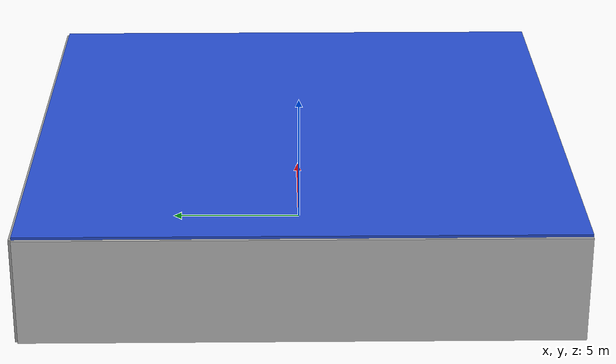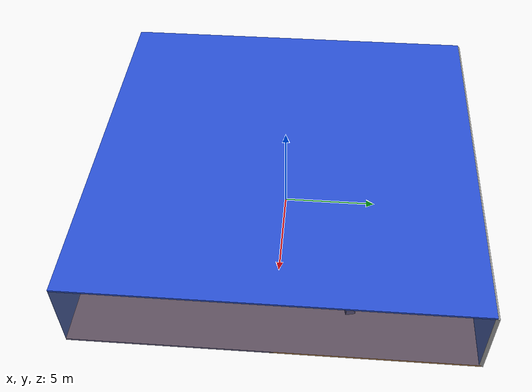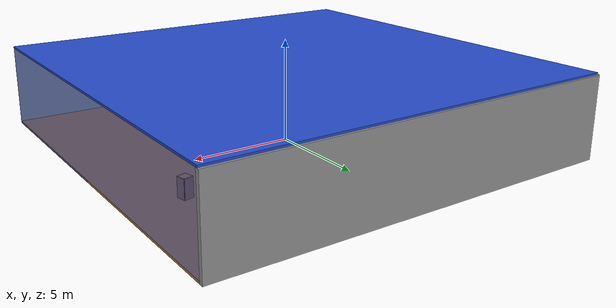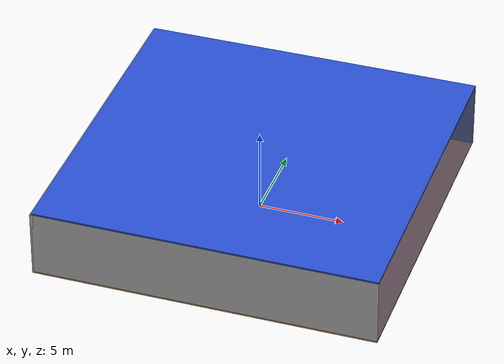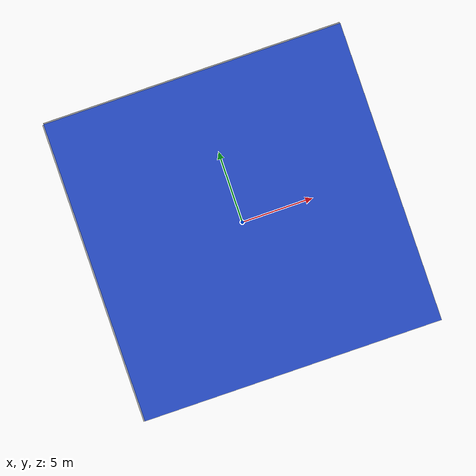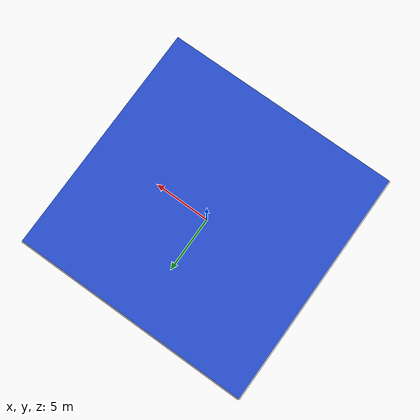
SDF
<sdf version="1.4">
 <world name="default">
  <physics type="ode">
   <max_step_size>0.001</max_step_size>
   <real_time_factor>1</real_time_factor>
   <real_time_update_rate>1000</real_time_update_rate>
   <gravity>0 0 -9.8</gravity>
  </physics>
  <scene><ambient>0.4 0.4 0.4 1</ambient><background>0.7 0.7 0.7 1</background><shadows>1</shadows></scene>
  <model name="Surrounding">
   <static>1</static>
   <link name="Ceiling">
    <collision name="Ceiling_Collision"><geometry><box><size>20 20 0.1</size></box></geometry></collision>
    <visual name="Ceiling_Visual">
     <geometry><box><size>20 20 0.1</size></box></geometry>
     <material>
      <script><uri>file://media/materials/scripts/gazebo.material</uri><name>Gazebo/Blue</name></script>
     </material>
    </visual>
    <pose>0 0 4.05 0 0 0</pose>
   </link>
   <link name="Wall_South">
    <collision name="Wall_South_Collision">
     <geometry><box><size>20 0 4</size></box></geometry>
     <pose>0 0 2 0 -0 0</pose>
    </collision>
    <visual name="Wall_South_Visual">
     <pose>0 0 2 0 -0 0</pose>
     <geometry><box><size>20 0 4</size></box></geometry>
     <material>
      <script><uri>file://media/materials/scripts/gazebo.material</uri><name>Gazebo/PioneerBody</name></script>
     </material>
    </visual>
    <velocity_decay><linear>0</linear><angular>0</angular></velocity_decay>
    <pose>0 -10 0 0 -0 0</pose>
   </link>
   <link name="Wall_East">
    <collision name="Wall_21_Collision">
     <geometry><box><size>20 0 4</size></box></geometry>
     <pose>0 0 2 0 -0 0</pose>
    </collision>
    <visual name="Wall_21_Visual">
     <pose>0 0 2 0 -0 0</pose>
     <geometry><box><size>20 0 4</size></box></geometry>
     <material>
      <script><uri>file://media/materials/scripts/gazebo.material</uri><name>Gazebo/BlueTransparent</name></script>
     </material>
    </visual>
    <velocity_decay><linear>0</linear><angular>0</angular></velocity_decay>
    <pose>10 0 0 0 -0 1.5708</pose>
   </link>
   <link name="Wall_North">
    <collision name="Wall_22_Collision">
     <geometry><box><size>20 0.2 4</size></box></geometry>
     <pose>0 0 2 0 -0 0</pose>
    </collision>
    <visual name="Wall_22_Visual">
     <pose>0 0 2 0 -0 0</pose>
     <geometry><box><size>20 0.2 4</size></box></geometry>
     <material>
      <script><uri>file://media/materials/scripts/gazebo.material</uri><name>Gazebo/GreyGradientSky</name></script>
     </material>
    </visual>
    <velocity_decay><linear>0</linear><angular>0</angular></velocity_decay>
    <pose>0 10 0 0 -0 0</pose>
   </link>
   <link name="Wall_West">
    <collision name="Wall_23_Collision">
     <geometry><box><size>20 0.2 4</size></box></geometry>
     <pose>0 0 2 0 -0 0</pose>
    </collision>
    <visual name="Wall_23_Visual">
     <pose>0 0 2 0 -0 0</pose>
     <geometry><box><size>20 0.2 4</size></box></geometry>
     <material>
      <script><uri>file://media/materials/scripts/gazebo.material</uri><name>Gazebo/PioneerBody</name></script>
     </material>
    </visual>
    <velocity_decay><linear>0</linear><angular>0</angular></velocity_decay>
    <pose>-10 0 0 0 0 -1.5708</pose>
   </link>
   <link name="Ground_link">
    <collision name="collision">
     <pose>0 0 .05 0 -0 0</pose>
     <geometry><box><size>20 20 0.1</size></box></geometry>
    </collision>
    <visual name="visual">
     <pose>0 0 .05 0 -0 0</pose>
     <geometry><box><size>20 20 0.1</size></box></geometry>
     <material>
      <script><uri>file://media/materials/scripts/gazebo.material</uri><name>Gazebo/Wood</name></script>
     </material>
    </visual>
   </link>
   <static>1</static>
  </model>
  <spherical_coordinates>
   <surface_model>EARTH_WGS84</surface_model>
   <latitude_deg>0</latitude_deg>
   <longitude_deg>0</longitude_deg>
   <elevation>0</elevation>
   <heading_deg>0</heading_deg>
  </spherical_coordinates>
  <light name="lightball_0" type="diffuse">
   <diffuse>0.8 0.8 0.8 1</diffuse>
   <specular>0.2 0.2 0.2 1</specular>
   <attenuation>
    <range>100</range>
    <constant>0.7</constant>
    <linear>0.01</linear>
    <quadratic>0.001</quadratic>
   </attenuation>
   <direction>-0.5 0.1 -0.9</direction>
   <pose>0.20120148574 4.92917059672 2.48824057476 0 0 0</pose>
  </light>
  <light name="lightball_1" type="diffuse">
   <diffuse>0.8 0.8 0.8 1</diffuse>
   <specular>0.2 0.2 0.2 1</specular>
   <attenuation>
    <range>100</range>
    <constant>0.7</constant>
    <linear>0.01</linear>
    <quadratic>0.001</quadratic>
   </attenuation>
   <direction>-0.5 0.1 -0.9</direction>
   <pose>-8.79854609734 -6.45903507978 1.93000485617 0 0 0</pose>
  </light>
  <light name="lightball_2" type="diffuse">
   <diffuse>0.8 0.8 0.8 1</diffuse>
   <specular>0.2 0.2 0.2 1</specular>
   <attenuation>
    <range>100</range>
    <constant>0.7</constant>
    <linear>0.01</linear>
    <quadratic>0.001</quadratic>
   </attenuation>
   <direction>-0.5 0.1 -0.9</direction>
   <pose>5.97515186522 -8.10658393164 1.17570463461 0 0 0</pose>
  </light>
  <light name="lightball_3" type="diffuse">
   <diffuse>0.8 0.8 0.8 1</diffuse>
   <specular>0.2 0.2 0.2 1</specular>
   <attenuation>
    <range>100</range>
    <constant>0.7</constant>
    <linear>0.01</linear>
    <quadratic>0.001</quadratic>
   </attenuation>
   <direction>-0.5 0.1 -0.9</direction>
   <pose>-1.58325440464 1.11665327982 3.17546088977 0 0 0</pose>
  </light>
  <light name="lightball_4" type="diffuse">
   <diffuse>0.8 0.8 0.8 1</diffuse>
   <specular>0.2 0.2 0.2 1</specular>
   <attenuation>
    <range>100</range>
    <constant>0.7</constant>
    <linear>0.01</linear>
    <quadratic>0.001</quadratic>
   </attenuation>
   <direction>-0.5 0.1 -0.9</direction>
   <pose>4.33757905359 -6.94423705103 1.78833582105 0 0 0</pose>
  </light>
  <light name="lightball_5" type="diffuse">
   <diffuse>0.8 0.8 0.8 1</diffuse>
   <specular>0.2 0.2 0.2 1</specular>
   <attenuation>
    <range>100</range>
    <constant>0.7</constant>
    <linear>0.01</linear>
    <quadratic>0.001</quadratic>
   </attenuation>
   <direction>-0.5 0.1 -0.9</direction>
   <pose>-4.15942221349 -1.39031623796 3.08723624268 0 0 0</pose>
  </light>
  <light name="lightball_6" type="diffuse">
   <diffuse>0.8 0.8 0.8 1</diffuse>
   <specular>0.2 0.2 0.2 1</specular>
   <attenuation>
    <range>100</range>
    <constant>0.7</constant>
    <linear>0.01</linear>
    <quadratic>0.001</quadratic>
   </attenuation>
   <direction>-0.5 0.1 -0.9</direction>
   <pose>-0.431332905338 1.56271599579 3.18507470606 0 0 0</pose>
  </light>
  <light name="lightball_7" type="diffuse">
   <diffuse>0.8 0.8 0.8 1</diffuse>
   <specular>0.2 0.2 0.2 1</specular>
   <attenuation>
    <range>100</range>
    <constant>0.7</constant>
    <linear>0.01</linear>
    <quadratic>0.001</quadratic>
   </attenuation>
   <direction>-0.5 0.1 -0.9</direction>
   <pose>4.38501272752 -2.69985928018 0.793002813254 0 0 0</pose>
  </light>
  <light name="lightball_8" type="diffuse">
   <diffuse>0.8 0.8 0.8 1</diffuse>
   <specular>0.2 0.2 0.2 1</specular>
   <attenuation>
    <range>100</range>
    <constant>0.7</constant>
    <linear>0.01</linear>
    <quadratic>0.001</quadratic>
   </attenuation>
   <direction>-0.5 0.1 -0.9</direction>
   <pose>2.01400251325 5.32175067957 2.44820525058 0 0 0</pose>
  </light>
  <light name="lightball_9" type="diffuse">
   <diffuse>0.8 0.8 0.8 1</diffuse>
   <specular>0.2 0.2 0.2 1</specular>
   <attenuation>
    <range>100</range>
    <constant>0.7</constant>
    <linear>0.01</linear>
    <quadratic>0.001</quadratic>
   </attenuation>
   <direction>-0.5 0.1 -0.9</direction>
   <pose>5.70933177863 -1.42651813607 2.60077844696 0 0 0</pose>
  </light>
  <light name="lightball_10" type="diffuse">
   <diffuse>0.8 0.8 0.8 1</diffuse>
   <specular>0.2 0.2 0.2 1</specular>
   <attenuation>
    <range>100</range>
    <constant>0.7</constant>
    <linear>0.01</linear>
    <quadratic>0.001</quadratic>
   </attenuation>
   <direction>-0.5 0.1 -0.9</direction>
   <pose>5.11613048464 5.25070553225 3.59120434532 0 0 0</pose>
  </light>
  <light name="lightball_11" type="diffuse">
   <diffuse>0.8 0.8 0.8 1</diffuse>
   <specular>0.2 0.2 0.2 1</specular>
   <attenuation>
    <range>100</range>
    <constant>0.7</constant>
    <linear>0.01</linear>
    <quadratic>0.001</quadratic>
   </attenuation>
   <direction>-0.5 0.1 -0.9</direction>
   <pose>-2.90032411386 8.98638984652 1.56957455001 0 0 0</pose>
  </light>
  <light name="lightball_12" type="diffuse">
   <diffuse>0.8 0.8 0.8 1</diffuse>
   <specular>0.2 0.2 0.2 1</specular>
   <attenuation>
    <range>100</range>
    <constant>0.7</constant>
    <linear>0.01</linear>
    <quadratic>0.001</quadratic>
   </attenuation>
   <direction>-0.5 0.1 -0.9</direction>
   <pose>7.29491901846 -8.72618512484 3.54239239643 0 0 0</pose>
  </light>
  <include><uri>model://cabinet</uri><pose>-7.54470873072 0.719422784381 0 0 0 1.5761506158</pose></include>
  <include>
   <uri>model://textured_shapes</uri>
   <pose>-4.86234809575 7.8352388631 0 0 0 0.995188849924</pose>
  </include>
  <include><uri>model://table</uri><pose>-1.95536579885 6.70178794799 0 0 0 0.29570693253</pose></include>
  <include><uri>model://cabinet</uri><pose>7.35273197672 3.73061245821 0 0 0 0.211083371613</pose></include>
 </world>
</sdf>

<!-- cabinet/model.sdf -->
<sdf version="1.5">
  <model name="cabinet">
    <static>true</static>
    <link name="cabinet_bottom_plate">
      <inertial>
        <pose>0 0 -1 0 0 0</pose>
        <inertia>
          <ixx>2.050000</ixx>
          <ixy>0</ixy>
          <ixz>0</ixz>
          <iyy>2.050000</iyy>
          <iyz>0</iyz>
          <izz>2.050000</izz>
        </inertia>
        <mass>25.000000</mass>
      </inertial>
      <collision name="cabinet_bottom_plate_geom">
        <pose>0 0 0.010000 0 0 0</pose>
        <geometry>
          <box>
            <size>0.450000 0.450000 0.020000</size>
          </box>
        </geometry>
      </collision>
      <visual name="cabinet_bottom_plate_geom_visual">
        <pose>0 0 0.010000 0 0 0</pose>
        <geometry>
          <box>
            <size>0.450000 0.450000 0.020000</size>
          </box>
        </geometry>
        <material>
          <script>
            <uri>model://media/materials/scripts/gazebo.material</uri>
            <name>Gazebo/Wood</name>
          </script>
        </material>
      </visual>
      <collision name="cabinet_bottom_plate_geom_cabinet_back_plate">
        <pose>0.235000 0 0.510000 0 0 0</pose>
        <geometry>
          <box>
            <size>0.020000 0.450000 1.020000</size>
          </box>
        </geometry>
      </collision>
      <visual name="cabinet_bottom_plate_geom_cabinet_back_plate_visual">
        <pose>0.235000 0 0.510000 0 0 0</pose>
        <geometry>
          <box>
            <size>0.020000 0.450000 1.020000</size>
          </box>
        </geometry>
        <material>
          <script>
            <uri>model://media/materials/scripts/gazebo.material</uri>
            <name>Gazebo/Wood</name>
          </script>
        </material>
      </visual>
      <collision name="cabinet_bottom_plate_geom_cabinet_left_plate">
        <pose>0 0.235000 0.510000 0 0 0</pose>
        <geometry>
          <box>
            <size>0.450000 0.020000 1.020000</size>
          </box>
        </geometry>
      </collision>
      <visual name="cabinet_bottom_plate_geom_cabinet_left_plate_visual">
        <pose>0 0.235000 0.510000 0 0 0</pose>
        <geometry>
          <box>
            <size>0.450000 0.020000 1.020000</size>
          </box>
        </geometry>
        <material>
          <script>
            <uri>model://media/materials/scripts/gazebo.material</uri>
            <name>Gazebo/Wood</name>
          </script>
        </material>
      </visual>
      <collision name="cabinet_bottom_plate_geom_cabinet_middle_plate">
        <pose>0 0 0.510000 0 0 0</pose>
        <geometry>
          <box>
            <size>0.450000 0.450000 0.020000</size>
          </box>
        </geometry>
      </collision>
      <visual name="cabinet_bottom_plate_geom_cabinet_middle_plate_visual">
        <pose>0 0 0.510000 0 0 0</pose>
        <geometry>
          <box>
            <size>0.450000 0.450000 0.020000</size>
          </box>
        </geometry>
        <material>
          <script>
            <uri>model://media/materials/scripts/gazebo.material</uri>
            <name>Gazebo/Wood</name>
          </script>
        </material>
      </visual>
      <collision name="cabinet_bottom_plate_geom_cabinet_right_plate">
        <pose>0 -0.235000 0.510000 0 0 0</pose>
        <geometry>
          <box>
            <size>0.450000 0.020000 1.020000</size>
          </box>
        </geometry>
      </collision>
      <visual name="cabinet_bottom_plate_geom_cabinet_right_plate_visual">
        <pose>0 -0.235000 0.510000 0 0 0</pose>
        <geometry>
          <box>
            <size>0.450000 0.020000 1.020000</size>
          </box>
        </geometry>
        <material>
          <script>
            <uri>model://media/materials/scripts/gazebo.material</uri>
            <name>Gazebo/Wood</name>
          </script>
        </material>
      </visual>
      <collision name="cabinet_bottom_plate_geom_cabinet_top_plate">
        <pose>0 0 1.010000 0 0 0</pose>
        <geometry>
          <box>
            <size>0.450000 0.450000 0.020000</size>
          </box>
        </geometry>
      </collision>
      <visual name="cabinet_bottom_plate_geom_cabinet_top_plate_visual">
        <pose>0 0 1.010000 0 0 0</pose>
        <geometry>
          <box>
            <size>0.450000 0.450000 0.020000</size>
          </box>
        </geometry>
        <material>
          <script>
            <uri>model://media/materials/scripts/gazebo.material</uri>
            <name>Gazebo/Wood</name>
          </script>
        </material>
      </visual>
    </link>
  </model>
</sdf>

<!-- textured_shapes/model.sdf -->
<sdf version="1.6">
  <model name="textured_shapes">
    <pose>0 0 0.5 0 0 0</pose>
    <link name="box">
      <pose>0 -1.5 0 0 0 0</pose>
      <collision name="collision">
        <geometry>
          <box>
            <size>1 1 1</size>
          </box>
        </geometry>
      </collision>
      <visual name="visual">
        <geometry>
          <box>
            <size>1 1 1</size>
          </box>
        </geometry>
        <material>
          <script>
            <uri>model://../model_source/models/textured_shapes/materials/scripts</uri>
            <uri>model://../model_source/models/textured_shapes/materials/textures</uri>
            <name>TexturedShape/Squares</name>
          </script>
        </material>
      </visual>
    </link>
    <link name="sphere">
      <collision name="collision">
        <geometry>
          <sphere>
            <radius>0.5</radius>
          </sphere>
        </geometry>
      </collision>
      <visual name="visual">
        <geometry>
          <sphere>
            <radius>0.5</radius>
          </sphere>
        </geometry>
        <material>
          <script>
            <uri>model://../model_source/models/textured_shapes/materials/scripts</uri>
            <uri>model://../model_source/models/textured_shapes/materials/textures</uri>
            <name>TexturedShape/Squares</name>
          </script>
        </material>
      </visual>
    </link>
    <link name="cylinder">
      <pose>0 1.5 0 0 0 0</pose>
      <collision name="collision">
        <geometry>
          <cylinder>
            <radius>0.5</radius>
            <length>1</length>
          </cylinder>
        </geometry>
      </collision>
      <visual name="visual">
        <geometry>
          <cylinder>
            <radius>0.5</radius>
            <length>1</length>
          </cylinder>
        </geometry>
        <material>
          <script>
            <uri>model://../model_source/models/textured_shapes/materials/scripts</uri>
            <uri>model://../model_source/models/textured_shapes/materials/textures</uri>
            <name>TexturedShape/Squares</name>
          </script>
        </material>
      </visual>
    </link>
  </model>
</sdf>

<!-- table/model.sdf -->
<sdf version="1.5">
  <model name="table">
    <static>true</static>
    <link name="link">
      <collision name="surface">
        <pose>0 0 1.0 0 0 0</pose>
        <geometry>
          <box>
            <size>1.5 0.8 0.03</size>
          </box>
        </geometry>
        <surface>
          <friction>
            <ode>
              <mu>0.6</mu>
              <mu2>0.6</mu2>
            </ode>
          </friction>
        </surface>
      </collision>
      <visual name="visual1">
        <pose>0 0 1.0 0 0 0</pose>
        <geometry>
          <box>
            <size>1.5 0.8 0.03</size>
          </box>
        </geometry>
        <material>
          <script>
            <uri>model://media/materials/scripts/gazebo.material</uri>
            <name>Gazebo/Wood</name>
          </script>
        </material>
      </visual>
      <collision name="front_left_leg">
        <pose>0.68 0.38 0.5 0 0 0</pose>
        <geometry>
          <cylinder>
            <radius>0.02</radius>
            <length>1.0</length>
          </cylinder>
        </geometry>
      </collision>
      <visual name="front_left_leg">
        <pose>0.68 0.38 0.5 0 0 0</pose>
        <geometry>
          <cylinder>
            <radius>0.02</radius>
            <length>1.0</length>
          </cylinder>
        </geometry>
        <material>
          <script>
            <uri>model://media/materials/scripts/gazebo.material</uri>
            <name>Gazebo/Grey</name>
          </script>
        </material>
      </visual>
      <collision name="front_right_leg">
        <pose>0.68 -0.38 0.5 0 0 0</pose>
        <geometry>
          <cylinder>
            <radius>0.02</radius>
            <length>1.0</length>
          </cylinder>
        </geometry>
      </collision>
      <visual name="front_right_leg">
        <pose>0.68 -0.38 0.5 0 0 0</pose>
        <geometry>
          <cylinder>
            <radius>0.02</radius>
            <length>1.0</length>
          </cylinder>
        </geometry>
        <material>
          <script>
            <uri>model://media/materials/scripts/gazebo.material</uri>
            <name>Gazebo/Grey</name>
          </script>
        </material>
      </visual>
      <collision name="back_right_leg">
        <pose>-0.68 -0.38 0.5 0 0 0</pose>
        <geometry>
          <cylinder>
            <radius>0.02</radius>
            <length>1.0</length>
          </cylinder>
        </geometry>
      </collision>
      <visual name="back_right_leg">
        <pose>-0.68 -0.38 0.5 0 0 0</pose>
        <geometry>
          <cylinder>
            <radius>0.02</radius>
            <length>1.0</length>
          </cylinder>
        </geometry>
        <material>
          <script>
            <uri>model://media/materials/scripts/gazebo.material</uri>
            <name>Gazebo/Grey</name>
          </script>
        </material>
      </visual>
      <collision name="back_left_leg">
        <pose>-0.68 0.38 0.5 0 0 0</pose>
        <geometry>
          <cylinder>
            <radius>0.02</radius>
            <length>1.0</length>
          </cylinder>
        </geometry>
      </collision>
      <visual name="back_left_leg">
        <pose>-0.68 0.38 0.5 0 0 0</pose>
        <geometry>
          <cylinder>
            <radius>0.02</radius>
            <length>1.0</length>
          </cylinder>
        </geometry>
        <material>
          <script>
            <uri>model://media/materials/scripts/gazebo.material</uri>
            <name>Gazebo/Grey</name>
          </script>
        </material>
      </visual>
    </link>
  </model>
</sdf>
